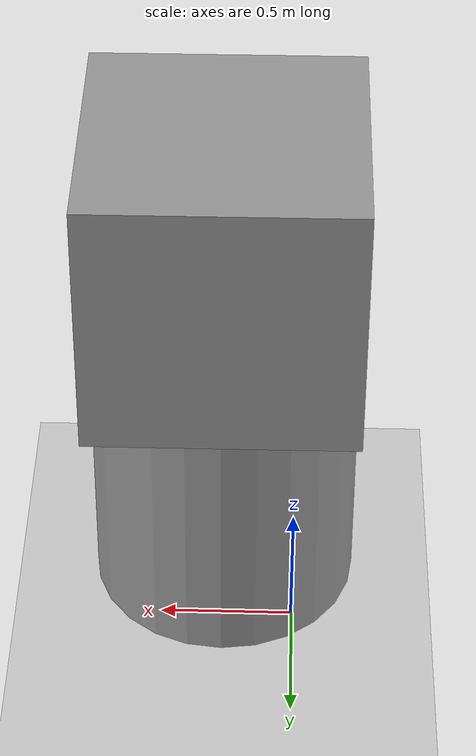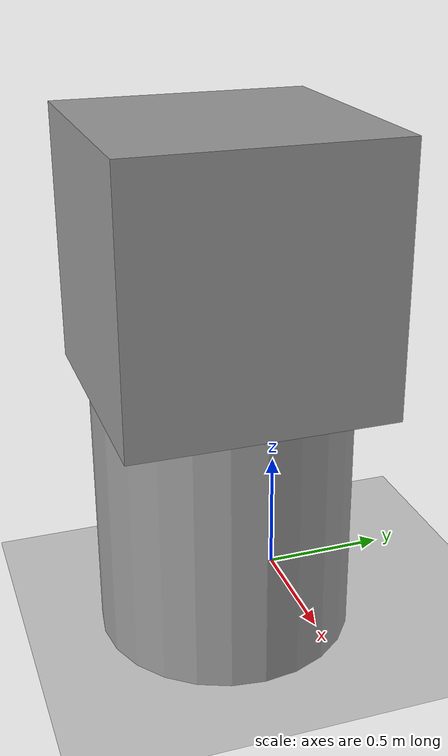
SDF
<sdf version="1.6">
 <world name="default">
  <include><uri>model://sun</uri></include>
  <include><uri>model://ground_plane</uri></include>
  <gravity>0 0 -9.8</gravity>
  <magnetic_field>6e-06 2.3e-05 -4.2e-05</magnetic_field>
  <atmosphere type="adiabatic"/>
  <physics name="default_physics" default="0" type="ode">
   <max_step_size>0.001</max_step_size>
   <real_time_factor>1</real_time_factor>
   <real_time_update_rate>1000</real_time_update_rate>
  </physics>
  <scene><ambient>0.4 0.4 0.4 1</ambient><background>0.7 0.7 0.7 1</background><shadows>1</shadows></scene>
  <spherical_coordinates>
   <surface_model>EARTH_WGS84</surface_model>
   <latitude_deg>0</latitude_deg>
   <longitude_deg>0</longitude_deg>
   <elevation>0</elevation>
   <heading_deg>0</heading_deg>
  </spherical_coordinates>
  <model name="Revolute_Joint_Test">
   <link name="link_0">
    <pose>0 0 -0.5 0 -0 0</pose>
    <inertial>
     <mass>1</mass>
     <inertia><ixx>0.145833</ixx><ixy>0</ixy><ixz>0</ixz><iyy>0.145833</iyy><iyz>0</iyz><izz>0.125</izz></inertia>
    </inertial>
    <visual name="visual">
     <geometry><cylinder><radius>0.5</radius><length>1</length></cylinder></geometry>
     <material>
      <lighting>1</lighting>
      <script><uri>file://media/materials/scripts/gazebo.material</uri><name>Gazebo/Grey</name></script>
      <shader type="pixel"><normal_map>__default__</normal_map></shader>
      <ambient>0.3 0.3 0.3 1</ambient>
      <diffuse>0.7 0.7 0.7 1</diffuse>
      <specular>0.01 0.01 0.01 1</specular>
      <emissive>0 0 0 1</emissive>
     </material>
    </visual>
    <collision name="collision">
     <geometry><cylinder><radius>0.5</radius><length>1</length></cylinder></geometry>
     <surface>
      <friction>
       <ode><mu>1</mu><mu2>1</mu2><fdir1>0 0 0</fdir1><slip1>0</slip1><slip2>0</slip2></ode>
       <torsional>
        <coefficient>1</coefficient>
        <patch_radius>0</patch_radius>
        <surface_radius>0</surface_radius>
        <use_patch_radius>1</use_patch_radius>
        <ode><slip>0</slip></ode>
       </torsional>
      </friction>
      <bounce><restitution_coefficient>0</restitution_coefficient><threshold>1e+06</threshold></bounce>
      <contact>
       <collide_without_contact>0</collide_without_contact>
       <collide_without_contact_bitmask>1</collide_without_contact_bitmask>
       <collide_bitmask>1</collide_bitmask>
       <ode>
        <soft_cfm>0</soft_cfm>
        <soft_erp>0.2</soft_erp>
        <kp>1e+13</kp>
        <kd>1</kd>
        <max_vel>0.01</max_vel>
        <min_depth>0</min_depth>
       </ode>
       <bullet>
        <split_impulse>1</split_impulse>
        <split_impulse_penetration_threshold>-0.01</split_impulse_penetration_threshold>
        <soft_cfm>0</soft_cfm>
        <soft_erp>0.2</soft_erp>
        <kp>1e+13</kp>
        <kd>1</kd>
       </bullet>
      </contact>
     </surface>
    </collision>
   </link>
   <link name="link_3">
    <pose>0 0 0.5 0 -0 0</pose>
    <inertial>
     <mass>1</mass>
     <inertia>
      <ixx>0.166667</ixx>
      <ixy>0</ixy>
      <ixz>0</ixz>
      <iyy>0.166667</iyy>
      <iyz>0</iyz>
      <izz>0.166667</izz>
     </inertia>
    </inertial>
    <visual name="visual">
     <geometry><box><size>1 1 1</size></box></geometry>
     <material>
      <lighting>1</lighting>
      <script><uri>file://media/materials/scripts/gazebo.material</uri><name>Gazebo/Grey</name></script>
      <shader type="pixel"/>
      <ambient>0.3 0.3 0.3 1</ambient>
      <diffuse>0.7 0.7 0.7 1</diffuse>
      <specular>0.01 0.01 0.01 1</specular>
      <emissive>0 0 0 1</emissive>
     </material>
    </visual>
    <collision name="collision">
     <geometry><box><size>1 1 1</size></box></geometry>
     <surface>
      <friction>
       <ode><mu>1</mu><mu2>1</mu2><fdir1>0 0 0</fdir1><slip1>0</slip1><slip2>0</slip2></ode>
       <torsional>
        <coefficient>1</coefficient>
        <patch_radius>0</patch_radius>
        <surface_radius>0</surface_radius>
        <use_patch_radius>1</use_patch_radius>
        <ode><slip>0</slip></ode>
       </torsional>
      </friction>
      <bounce><restitution_coefficient>0</restitution_coefficient><threshold>1e+06</threshold></bounce>
      <contact>
       <collide_without_contact>0</collide_without_contact>
       <collide_without_contact_bitmask>1</collide_without_contact_bitmask>
       <collide_bitmask>1</collide_bitmask>
       <ode>
        <soft_cfm>0</soft_cfm>
        <soft_erp>0.2</soft_erp>
        <kp>1e+13</kp>
        <kd>1</kd>
        <max_vel>0.01</max_vel>
        <min_depth>0</min_depth>
       </ode>
       <bullet>
        <split_impulse>1</split_impulse>
        <split_impulse_penetration_threshold>-0.01</split_impulse_penetration_threshold>
        <soft_cfm>0</soft_cfm>
        <soft_erp>0.2</soft_erp>
        <kp>1e+13</kp>
        <kd>1</kd>
       </bullet>
      </contact>
     </surface>
    </collision>
   </link>
   <joint name="link_0_JOINT_0" type="revolute">
    <parent>link_0</parent>
    <child>link_3</child>
    <axis>
     <xyz>0 0 1</xyz>
     <use_parent_model_frame>0</use_parent_model_frame>
     <limit>
      <lower>-1.79769e+308</lower>
      <upper>1.79769e+308</upper>
      <effort>-1</effort>
      <velocity>-1</velocity>
     </limit>
     <dynamics>
      <spring_reference>0</spring_reference>
      <spring_stiffness>0</spring_stiffness>
      <damping>0</damping>
     </dynamics>
    </axis>
    <physics>
     <ode><limit><cfm>0</cfm><erp>0.2</erp></limit><suspension><cfm>0</cfm><erp>0.2</erp></suspension></ode>
    </physics>
   </joint>
   <static>0</static>
   <pose>0.26497 -0.306092 1 0 -0 0</pose>
   <plugin name="hello_world" filename="libgazebo_plugins.so"/>
  </model>
 </world>
</sdf>
